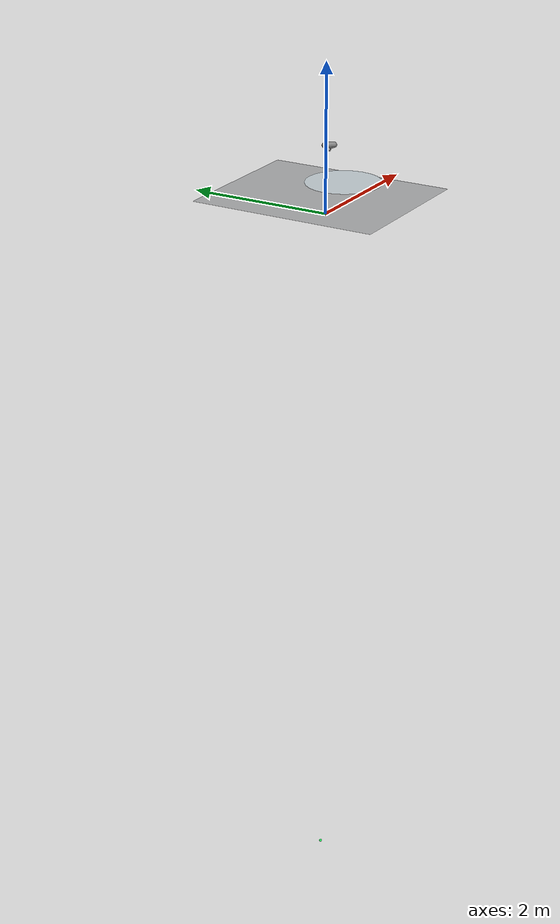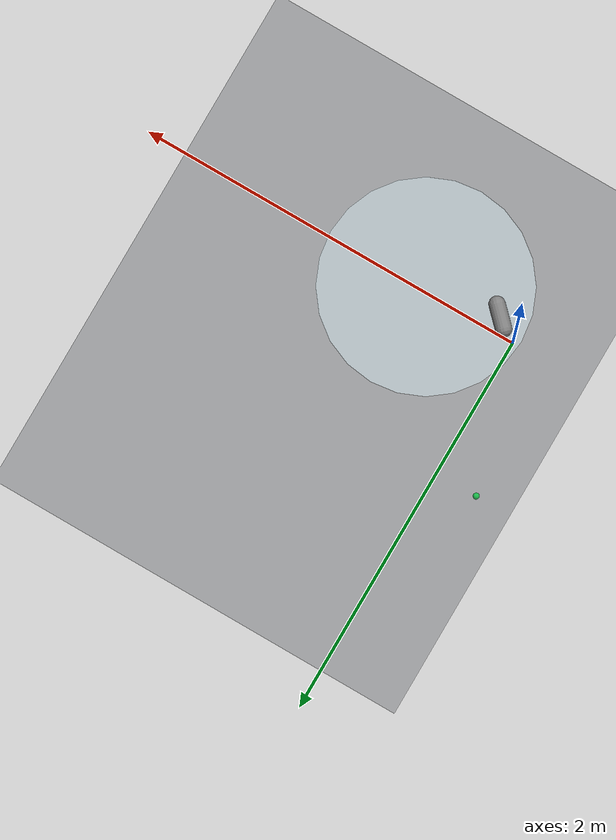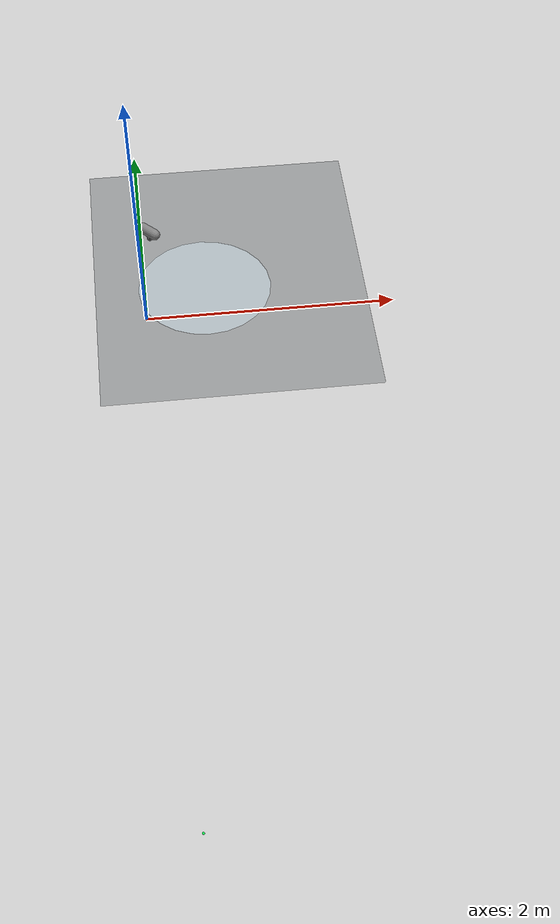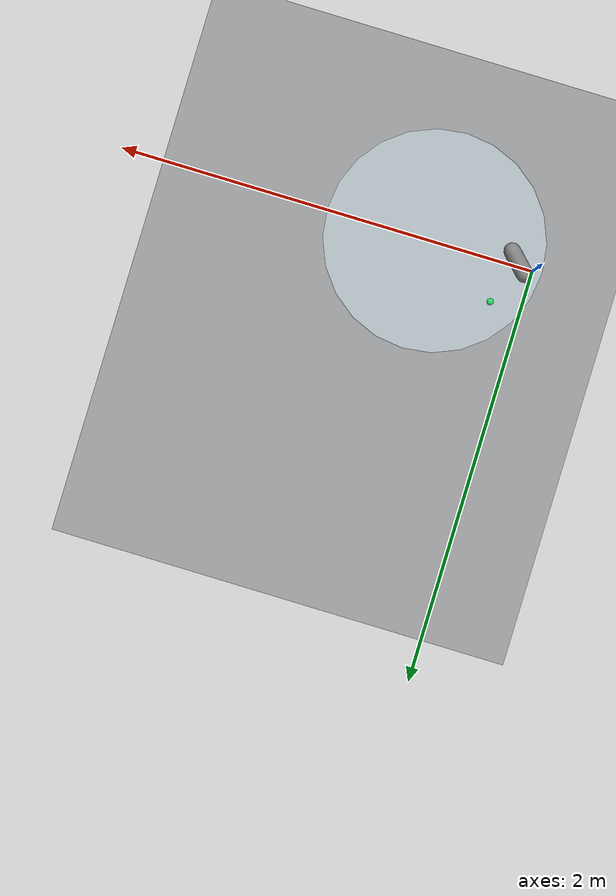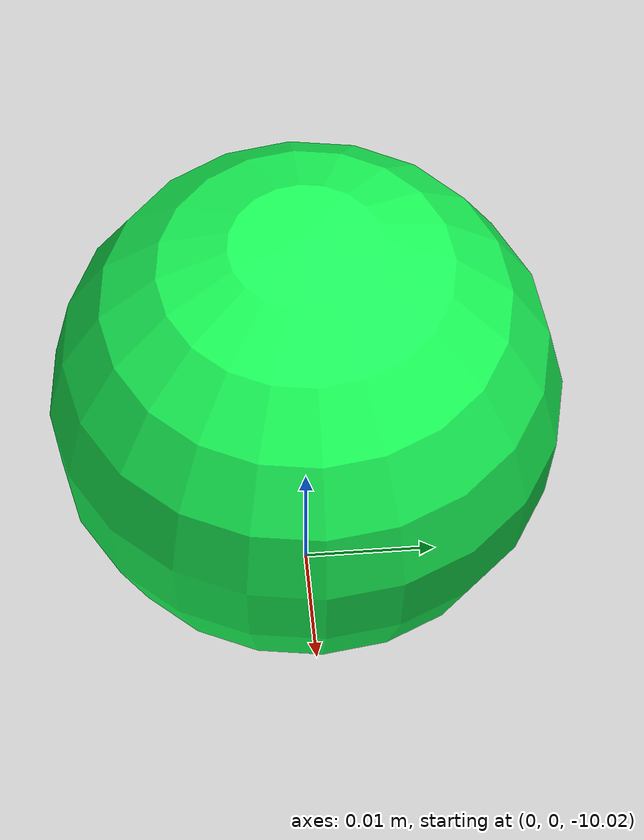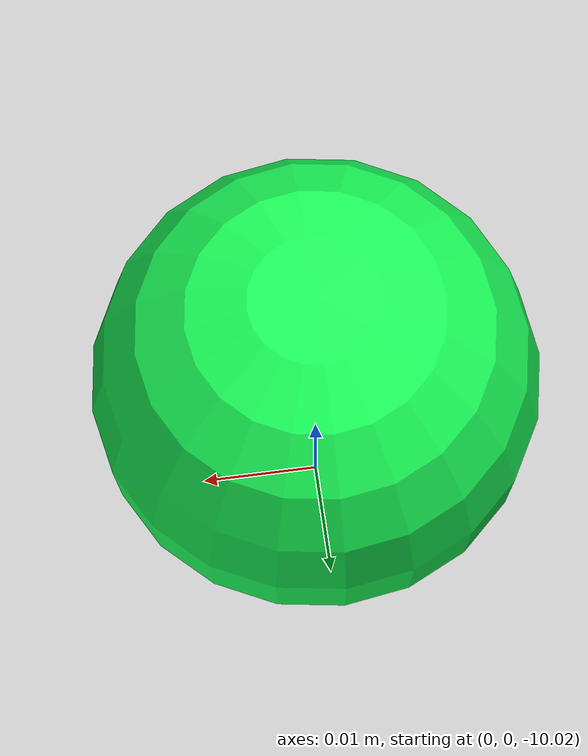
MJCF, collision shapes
<mujoco model="official_franka_panda_tracking">
  <include file="mjx_panda.xml"/>

  <option timestep="0.002" iterations="8" ls_iterations="8" integrator="implicitfast">
    <flag eulerdamp="disable"/>
  </option>

  <statistic center="0.45 0 0.45" extent="1.2"/>

  <visual>
    <global offwidth="1920" offheight="1080" azimuth="135" elevation="-25"/>
    <headlight diffuse="0.65 0.65 0.65" ambient="0.35 0.35 0.35" specular="0 0 0"/>
    <rgba haze="0.12 0.14 0.16 1"/>
    <quality shadowsize="2048"/>
  </visual>

  <asset>
    <texture type="skybox" builtin="gradient" rgb1="0.24 0.32 0.38" rgb2="0 0 0" width="512" height="3072"/>
    <texture type="2d" name="tracking_ground" builtin="checker" mark="edge"
      rgb1="0.18 0.20 0.22" rgb2="0.10 0.12 0.14" markrgb="0.65 0.68 0.70"
      width="300" height="300"/>
    <material name="tracking_ground" texture="tracking_ground" texuniform="true" texrepeat="6 6" reflectance="0.18"/>
  </asset>

  <worldbody>
    <light name="tracking_key" pos="0.8 -1.1 1.9" dir="-0.45 0.55 -1" directional="true"/>
    <light name="tracking_fill" pos="-1.0 1.1 1.2" dir="0.55 -0.45 -1" diffuse="0.25 0.25 0.25"/>
    <geom name="floor" type="plane" size="1.8 1.8 0.05" material="tracking_ground"/>
    <geom name="workspace_disk" type="cylinder" size="0.52 0.001" pos="0.48 0 0.30"
      rgba="0.25 0.45 0.55 0.08" contype="0" conaffinity="0"/>
    <camera name="overview" pos="1.45 -1.45 1.08" xyaxes="0.72 0.69 0 -0.34 0.35 0.87"/>

    <geom name="target_marker" type="sphere" size="0.0200" pos="0 0 -10" rgba="0.10 1.00 0.35 0.95" contype="0" conaffinity="0" mass="0.0001"/>
    <geom name="reference_trace_000" type="sphere" size="0.0042" pos="0 0 -10" rgba="0.50 0.82 1.00 0.38" contype="0" conaffinity="0" mass="0.0001"/>
    <geom name="reference_trace_001" type="sphere" size="0.0042" pos="0 0 -10" rgba="0.50 0.82 1.00 0.38" contype="0" conaffinity="0" mass="0.0001"/>
    <geom name="reference_trace_002" type="sphere" size="0.0042" pos="0 0 -10" rgba="0.50 0.82 1.00 0.38" contype="0" conaffinity="0" mass="0.0001"/>
    <geom name="reference_trace_003" type="sphere" size="0.0042" pos="0 0 -10" rgba="0.50 0.82 1.00 0.38" contype="0" conaffinity="0" mass="0.0001"/>
    <geom name="reference_trace_004" type="sphere" size="0.0042" pos="0 0 -10" rgba="0.50 0.82 1.00 0.38" contype="0" conaffinity="0" mass="0.0001"/>
    <geom name="reference_trace_005" type="sphere" size="0.0042" pos="0 0 -10" rgba="0.50 0.82 1.00 0.38" contype="0" conaffinity="0" mass="0.0001"/>
    <geom name="reference_trace_006" type="sphere" size="0.0042" pos="0 0 -10" rgba="0.50 0.82 1.00 0.38" contype="0" conaffinity="0" mass="0.0001"/>
    <geom name="reference_trace_007" type="sphere" size="0.0042" pos="0 0 -10" rgba="0.50 0.82 1.00 0.38" contype="0" conaffinity="0" mass="0.0001"/>
    <geom name="reference_trace_008" type="sphere" size="0.0042" pos="0 0 -10" rgba="0.50 0.82 1.00 0.38" contype="0" conaffinity="0" mass="0.0001"/>
    <geom name="reference_trace_009" type="sphere" size="0.0042" pos="0 0 -10" rgba="0.50 0.82 1.00 0.38" contype="0" conaffinity="0" mass="0.0001"/>
    <geom name="reference_trace_010" type="sphere" size="0.0042" pos="0 0 -10" rgba="0.50 0.82 1.00 0.38" contype="0" conaffinity="0" mass="0.0001"/>
    <geom name="reference_trace_011" type="sphere" size="0.0042" pos="0 0 -10" rgba="0.50 0.82 1.00 0.38" contype="0" conaffinity="0" mass="0.0001"/>
    <geom name="reference_trace_012" type="sphere" size="0.0042" pos="0 0 -10" rgba="0.50 0.82 1.00 0.38" contype="0" conaffinity="0" mass="0.0001"/>
    <geom name="reference_trace_013" type="sphere" size="0.0042" pos="0 0 -10" rgba="0.50 0.82 1.00 0.38" contype="0" conaffinity="0" mass="0.0001"/>
    <geom name="reference_trace_014" type="sphere" size="0.0042" pos="0 0 -10" rgba="0.50 0.82 1.00 0.38" contype="0" conaffinity="0" mass="0.0001"/>
    <geom name="reference_trace_015" type="sphere" size="0.0042" pos="0 0 -10" rgba="0.50 0.82 1.00 0.38" contype="0" conaffinity="0" mass="0.0001"/>
    <geom name="reference_trace_016" type="sphere" size="0.0042" pos="0 0 -10" rgba="0.50 0.82 1.00 0.38" contype="0" conaffinity="0" mass="0.0001"/>
    <geom name="reference_trace_017" type="sphere" size="0.0042" pos="0 0 -10" rgba="0.50 0.82 1.00 0.38" contype="0" conaffinity="0" mass="0.0001"/>
    <geom name="reference_trace_018" type="sphere" size="0.0042" pos="0 0 -10" rgba="0.50 0.82 1.00 0.38" contype="0" conaffinity="0" mass="0.0001"/>
    <geom name="reference_trace_019" type="sphere" size="0.0042" pos="0 0 -10" rgba="0.50 0.82 1.00 0.38" contype="0" conaffinity="0" mass="0.0001"/>
    <geom name="generated_trace_000" type="sphere" size="0.0045" pos="0 0 -10" rgba="0.15 1.00 0.40 0.70" contype="0" conaffinity="0" mass="0.0001"/>
    <geom name="generated_trace_001" type="sphere" size="0.0045" pos="0 0 -10" rgba="0.15 1.00 0.40 0.70" contype="0" conaffinity="0" mass="0.0001"/>
    <geom name="generated_trace_002" type="sphere" size="0.0045" pos="0 0 -10" rgba="0.15 1.00 0.40 0.70" contype="0" conaffinity="0" mass="0.0001"/>
    <geom name="generated_trace_003" type="sphere" size="0.0045" pos="0 0 -10" rgba="0.15 1.00 0.40 0.70" contype="0" conaffinity="0" mass="0.0001"/>
    <geom name="generated_trace_004" type="sphere" size="0.0045" pos="0 0 -10" rgba="0.15 1.00 0.40 0.70" contype="0" conaffinity="0" mass="0.0001"/>
    <geom name="generated_trace_005" type="sphere" size="0.0045" pos="0 0 -10" rgba="0.15 1.00 0.40 0.70" contype="0" conaffinity="0" mass="0.0001"/>
    <geom name="generated_trace_006" type="sphere" size="0.0045" pos="0 0 -10" rgba="0.15 1.00 0.40 0.70" contype="0" conaffinity="0" mass="0.0001"/>
    <geom name="generated_trace_007" type="sphere" size="0.0045" pos="0 0 -10" rgba="0.15 1.00 0.40 0.70" contype="0" conaffinity="0" mass="0.0001"/>
    <geom name="generated_trace_008" type="sphere" size="0.0045" pos="0 0 -10" rgba="0.15 1.00 0.40 0.70" contype="0" conaffinity="0" mass="0.0001"/>
    <geom name="generated_trace_009" type="sphere" size="0.0045" pos="0 0 -10" rgba="0.15 1.00 0.40 0.70" contype="0" conaffinity="0" mass="0.0001"/>
    <geom name="generated_trace_010" type="sphere" size="0.0045" pos="0 0 -10" rgba="0.15 1.00 0.40 0.70" contype="0" conaffinity="0" mass="0.0001"/>
    <geom name="generated_trace_011" type="sphere" size="0.0045" pos="0 0 -10" rgba="0.15 1.00 0.40 0.70" contype="0" conaffinity="0" mass="0.0001"/>
    <geom name="generated_trace_012" type="sphere" size="0.0045" pos="0 0 -10" rgba="0.15 1.00 0.40 0.70" contype="0" conaffinity="0" mass="0.0001"/>
    <geom name="generated_trace_013" type="sphere" size="0.0045" pos="0 0 -10" rgba="0.15 1.00 0.40 0.70" contype="0" conaffinity="0" mass="0.0001"/>
    <geom name="generated_trace_014" type="sphere" size="0.0045" pos="0 0 -10" rgba="0.15 1.00 0.40 0.70" contype="0" conaffinity="0" mass="0.0001"/>
    <geom name="generated_trace_015" type="sphere" size="0.0045" pos="0 0 -10" rgba="0.15 1.00 0.40 0.70" contype="0" conaffinity="0" mass="0.0001"/>
    <geom name="generated_trace_016" type="sphere" size="0.0045" pos="0 0 -10" rgba="0.15 1.00 0.40 0.70" contype="0" conaffinity="0" mass="0.0001"/>
    <geom name="generated_trace_017" type="sphere" size="0.0045" pos="0 0 -10" rgba="0.15 1.00 0.40 0.70" contype="0" conaffinity="0" mass="0.0001"/>
    <geom name="generated_trace_018" type="sphere" size="0.0045" pos="0 0 -10" rgba="0.15 1.00 0.40 0.70" contype="0" conaffinity="0" mass="0.0001"/>
    <geom name="generated_trace_019" type="sphere" size="0.0045" pos="0 0 -10" rgba="0.15 1.00 0.40 0.70" contype="0" conaffinity="0" mass="0.0001"/>
    <geom name="actual_trace_000" type="sphere" size="0.0048" pos="0 0 -10" rgba="1.00 0.38 0.12 0.82" contype="0" conaffinity="0" mass="0.0001"/>
    <geom name="actual_trace_001" type="sphere" size="0.0048" pos="0 0 -10" rgba="1.00 0.38 0.12 0.82" contype="0" conaffinity="0" mass="0.0001"/>
    <geom name="actual_trace_002" type="sphere" size="0.0048" pos="0 0 -10" rgba="1.00 0.38 0.12 0.82" contype="0" conaffinity="0" mass="0.0001"/>
    <geom name="actual_trace_003" type="sphere" size="0.0048" pos="0 0 -10" rgba="1.00 0.38 0.12 0.82" contype="0" conaffinity="0" mass="0.0001"/>
    <geom name="actual_trace_004" type="sphere" size="0.0048" pos="0 0 -10" rgba="1.00 0.38 0.12 0.82" contype="0" conaffinity="0" mass="0.0001"/>
    <geom name="actual_trace_005" type="sphere" size="0.0048" pos="0 0 -10" rgba="1.00 0.38 0.12 0.82" contype="0" conaffinity="0" mass="0.0001"/>
    <geom name="actual_trace_006" type="sphere" size="0.0048" pos="0 0 -10" rgba="1.00 0.38 0.12 0.82" contype="0" conaffinity="0" mass="0.0001"/>
    <geom name="actual_trace_007" type="sphere" size="0.0048" pos="0 0 -10" rgba="1.00 0.38 0.12 0.82" contype="0" conaffinity="0" mass="0.0001"/>
    <geom name="actual_trace_008" type="sphere" size="0.0048" pos="0 0 -10" rgba="1.00 0.38 0.12 0.82" contype="0" conaffinity="0" mass="0.0001"/>
    <geom name="actual_trace_009" type="sphere" size="0.0048" pos="0 0 -10" rgba="1.00 0.38 0.12 0.82" contype="0" conaffinity="0" mass="0.0001"/>
    <geom name="actual_trace_010" type="sphere" size="0.0048" pos="0 0 -10" rgba="1.00 0.38 0.12 0.82" contype="0" conaffinity="0" mass="0.0001"/>
    <geom name="actual_trace_011" type="sphere" size="0.0048" pos="0 0 -10" rgba="1.00 0.38 0.12 0.82" contype="0" conaffinity="0" mass="0.0001"/>
    <geom name="actual_trace_012" type="sphere" size="0.0048" pos="0 0 -10" rgba="1.00 0.38 0.12 0.82" contype="0" conaffinity="0" mass="0.0001"/>
    <geom name="actual_trace_013" type="sphere" size="0.0048" pos="0 0 -10" rgba="1.00 0.38 0.12 0.82" contype="0" conaffinity="0" mass="0.0001"/>
    <geom name="actual_trace_014" type="sphere" size="0.0048" pos="0 0 -10" rgba="1.00 0.38 0.12 0.82" contype="0" conaffinity="0" mass="0.0001"/>
    <geom name="actual_trace_015" type="sphere" size="0.0048" pos="0 0 -10" rgba="1.00 0.38 0.12 0.82" contype="0" conaffinity="0" mass="0.0001"/>
    <geom name="actual_trace_016" type="sphere" size="0.0048" pos="0 0 -10" rgba="1.00 0.38 0.12 0.82" contype="0" conaffinity="0" mass="0.0001"/>
    <geom name="actual_trace_017" type="sphere" size="0.0048" pos="0 0 -10" rgba="1.00 0.38 0.12 0.82" contype="0" conaffinity="0" mass="0.0001"/>
    <geom name="actual_trace_018" type="sphere" size="0.0048" pos="0 0 -10" rgba="1.00 0.38 0.12 0.82" contype="0" conaffinity="0" mass="0.0001"/>
    <geom name="actual_trace_019" type="sphere" size="0.0048" pos="0 0 -10" rgba="1.00 0.38 0.12 0.82" contype="0" conaffinity="0" mass="0.0001"/>
  </worldbody>
</mujoco>

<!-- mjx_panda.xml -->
<mujoco model="panda">
  <compiler angle="radian" meshdir="assets" autolimits="true"/>

  <default>
    <default class="panda">
      <material specular="0.5" shininess="0.25"/>
      <joint armature="0.1" damping="1" axis="0 0 1" range="-2.8973 2.8973"/>
      <general dyntype="none" biastype="affine" ctrlrange="-2.8973 2.8973" forcerange="-87 87"/>
      <position forcerange="-100 100"/>
      <default class="finger">
        <joint axis="0 1 0" type="slide" range="0 0.04"/>
      </default>

      <default class="visual">
        <geom type="mesh" contype="0" conaffinity="0" group="2"/>
      </default>
      <default class="collision">
        <geom group="3" type="mesh" contype="0" conaffinity="0"/>
        <default class="primitive_collision">
          <geom group="3" type="box" contype="0" conaffinity="0"
           condim="3" solimp="0.99 0.995 0.01" solref="0.01 1" friction="1 0.005 0.0001"/>
          <default class="fingertip_pad_collision_1">
            <geom type="box" size="0.011 0.0075 0.01" pos="0 0.0185 0.011"/>
          </default>
          <default class="fingertip_pad_collision_2">
            <geom type="box" size="0.011 0.0044 0.0019" pos="0 0.0068 0.0022"/>
          </default>
          <default class="fingertip_pad_collision_3">
            <geom type="box" size="0.00875 0.0035 0.01175" pos="0 0.0159 0.02835" quat="1 0.25 0 0"/>
          </default>
          <default class="fingertip_pad_collision_4">
            <geom type="box" size="0.00875 0.0076 0.00825" pos="0 0.00758 0.04525" conaffinity="3"/>
          </default>
        </default>
      </default>
    </default>
  </default>

  <asset>
    <material class="panda" name="white" rgba="1 1 1 1"/>
    <material class="panda" name="off_white" rgba="0.901961 0.921569 0.929412 1"/>
    <material class="panda" name="black" rgba="0.25 0.25 0.25 1"/>
    <material class="panda" name="green" rgba="0 1 0 1"/>
    <material class="panda" name="light_blue" rgba="0.039216 0.541176 0.780392 1"/>

    <!-- Collision meshes -->
    <mesh name="link0_c" file="link0.stl"/>
    <mesh name="link1_c" file="link1.stl"/>
    <mesh name="link2_c" file="link2.stl"/>
    <mesh name="link3_c" file="link3.stl"/>
    <mesh name="link4_c" file="link4.stl"/>
    <mesh name="link5_c0" file="link5_collision_0.obj"/>
    <mesh name="link5_c1" file="link5_collision_1.obj"/>
    <mesh name="link5_c2" file="link5_collision_2.obj"/>
    <mesh name="link6_c" file="link6.stl"/>
    <mesh name="link7_c" file="link7.stl"/>
    <mesh name="hand_c" file="hand.stl"/>

    <!-- Visual meshes -->
    <mesh file="link0_0.obj"/>
    <mesh file="link0_1.obj"/>
    <mesh file="link0_2.obj"/>
    <mesh file="link0_3.obj"/>
    <mesh file="link0_4.obj"/>
    <mesh file="link0_5.obj"/>
    <mesh file="link0_7.obj"/>
    <mesh file="link0_8.obj"/>
    <mesh file="link0_9.obj"/>
    <mesh file="link0_10.obj"/>
    <mesh file="link0_11.obj"/>
    <mesh file="link1.obj"/>
    <mesh file="link2.obj"/>
    <mesh file="link3_0.obj"/>
    <mesh file="link3_1.obj"/>
    <mesh file="link3_2.obj"/>
    <mesh file="link3_3.obj"/>
    <mesh file="link4_0.obj"/>
    <mesh file="link4_1.obj"/>
    <mesh file="link4_2.obj"/>
    <mesh file="link4_3.obj"/>
    <mesh file="link5_0.obj"/>
    <mesh file="link5_1.obj"/>
    <mesh file="link5_2.obj"/>
    <mesh file="link6_0.obj"/>
    <mesh file="link6_1.obj"/>
    <mesh file="link6_2.obj"/>
    <mesh file="link6_3.obj"/>
    <mesh file="link6_4.obj"/>
    <mesh file="link6_5.obj"/>
    <mesh file="link6_6.obj"/>
    <mesh file="link6_7.obj"/>
    <mesh file="link6_8.obj"/>
    <mesh file="link6_9.obj"/>
    <mesh file="link6_10.obj"/>
    <mesh file="link6_11.obj"/>
    <mesh file="link6_12.obj"/>
    <mesh file="link6_13.obj"/>
    <mesh file="link6_14.obj"/>
    <mesh file="link6_15.obj"/>
    <mesh file="link6_16.obj"/>
    <mesh file="link7_0.obj"/>
    <mesh file="link7_1.obj"/>
    <mesh file="link7_2.obj"/>
    <mesh file="link7_3.obj"/>
    <mesh file="link7_4.obj"/>
    <mesh file="link7_5.obj"/>
    <mesh file="link7_6.obj"/>
    <mesh file="link7_7.obj"/>
    <mesh file="hand_0.obj"/>
    <mesh file="hand_1.obj"/>
    <mesh file="hand_2.obj"/>
    <mesh file="hand_3.obj"/>
    <mesh file="hand_4.obj"/>
    <mesh file="finger_0.obj"/>
    <mesh file="finger_1.obj"/>
  </asset>

  <worldbody>
    <light name="top" pos="0 0 2" mode="trackcom"/>
    <body name="link0" childclass="panda">
      <inertial mass="0.629769" pos="-0.041018 -0.00014 0.049974"
        fullinertia="0.00315 0.00388 0.004285 8.2904e-7 0.00015 8.2299e-6"/>
      <geom mesh="link0_0" material="off_white" class="visual"/>
      <geom mesh="link0_1" material="black" class="visual"/>
      <geom mesh="link0_2" material="off_white" class="visual"/>
      <geom mesh="link0_3" material="black" class="visual"/>
      <geom mesh="link0_4" material="off_white" class="visual"/>
      <geom mesh="link0_5" material="black" class="visual"/>
      <geom mesh="link0_7" material="white" class="visual"/>
      <geom mesh="link0_8" material="white" class="visual"/>
      <geom mesh="link0_9" material="black" class="visual"/>
      <geom mesh="link0_10" material="off_white" class="visual"/>
      <geom mesh="link0_11" material="white" class="visual"/>
      <geom mesh="link0_c" class="collision"/>
      <body name="link1" pos="0 0 0.333">
        <inertial mass="4.970684" pos="0.003875 0.002081 -0.04762"
          fullinertia="0.70337 0.70661 0.0091170 -0.00013900 0.0067720 0.019169"/>
        <joint name="joint1" damping="40"/>
        <geom material="white" mesh="link1" class="visual"/>
        <geom mesh="link1_c" class="collision"/>
        <body name="link2" quat="1 -1 0 0">
          <inertial mass="0.646926" pos="-0.003141 -0.02872 0.003495"
            fullinertia="0.0079620 2.8110e-2 2.5995e-2 -3.925e-3 1.0254e-2 7.04e-4"/>
          <joint name="joint2" range="-1.7628 1.7628" damping="40"/>
          <geom material="white" mesh="link2" class="visual"/>
          <geom mesh="link2_c" class="collision"/>
          <body name="link3" pos="0 -0.316 0" quat="1 1 0 0">
            <joint name="joint3" damping="40"/>
            <inertial mass="3.228604" pos="2.7518e-2 3.9252e-2 -6.6502e-2"
              fullinertia="3.7242e-2 3.6155e-2 1.083e-2 -4.761e-3 -1.1396e-2 -1.2805e-2"/>
            <geom mesh="link3_0" material="white" class="visual"/>
            <geom mesh="link3_1" material="white" class="visual"/>
            <geom mesh="link3_2" material="white" class="visual"/>
            <geom mesh="link3_3" material="black" class="visual"/>
            <geom mesh="link3_c" class="collision"/>
            <body name="link4" pos="0.0825 0 0" quat="1 1 0 0">
              <inertial mass="3.587895" pos="-5.317e-2 1.04419e-1 2.7454e-2"
                fullinertia="2.5853e-2 1.9552e-2 2.8323e-2 7.796e-3 -1.332e-3 8.641e-3"/>
              <joint name="joint4" range="-3.0718 -0.0698" damping="40"/>
              <geom mesh="link4_0" material="white" class="visual"/>
              <geom mesh="link4_1" material="white" class="visual"/>
              <geom mesh="link4_2" material="black" class="visual"/>
              <geom mesh="link4_3" material="white" class="visual"/>
              <geom mesh="link4_c" class="collision"/>
              <body name="link5" pos="-0.0825 0.384 0" quat="1 -1 0 0">
                <inertial mass="1.225946" pos="-1.1953e-2 4.1065e-2 -3.8437e-2"
                  fullinertia="3.5549e-2 2.9474e-2 8.627e-3 -2.117e-3 -4.037e-3 2.29e-4"/>
                <joint name="joint5" damping="2"/>
                <geom mesh="link5_0" material="black" class="visual"/>
                <geom mesh="link5_1" material="white" class="visual"/>
                <geom mesh="link5_2" material="white" class="visual"/>
                <geom mesh="link5_c0" class="collision"/>
                <geom mesh="link5_c1" class="collision"/>
                <geom mesh="link5_c2" class="collision"/>
                <body name="link6" quat="1 1 0 0">
                  <inertial mass="1.666555" pos="6.0149e-2 -1.4117e-2 -1.0517e-2"
                    fullinertia="1.964e-3 4.354e-3 5.433e-3 1.09e-4 -1.158e-3 3.41e-4"/>
                  <joint name="joint6" range="-0.0175 3.7525" damping="2"/>
                  <geom mesh="link6_0" material="off_white" class="visual"/>
                  <geom mesh="link6_1" material="white" class="visual"/>
                  <geom mesh="link6_2" material="black" class="visual"/>
                  <geom mesh="link6_3" material="white" class="visual"/>
                  <geom mesh="link6_4" material="white" class="visual"/>
                  <geom mesh="link6_5" material="white" class="visual"/>
                  <geom mesh="link6_6" material="white" class="visual"/>
                  <geom mesh="link6_7" material="light_blue" class="visual"/>
                  <geom mesh="link6_8" material="light_blue" class="visual"/>
                  <geom mesh="link6_9" material="black" class="visual"/>
                  <geom mesh="link6_10" material="black" class="visual"/>
                  <geom mesh="link6_11" material="white" class="visual"/>
                  <geom mesh="link6_12" material="green" class="visual"/>
                  <geom mesh="link6_13" material="white" class="visual"/>
                  <geom mesh="link6_14" material="black" class="visual"/>
                  <geom mesh="link6_15" material="black" class="visual"/>
                  <geom mesh="link6_16" material="white" class="visual"/>
                  <geom mesh="link6_c" class="collision"/>
                  <body name="link7" pos="0.088 0 0" quat="1 1 0 0">
                    <inertial mass="7.35522e-01" pos="1.0517e-2 -4.252e-3 6.1597e-2"
                      fullinertia="1.2516e-2 1.0027e-2 4.815e-3 -4.28e-4 -1.196e-3 -7.41e-4"/>
                    <joint name="joint7" damping="2"/>
                    <geom mesh="link7_0" material="white" class="visual"/>
                    <geom mesh="link7_1" material="black" class="visual"/>
                    <geom mesh="link7_2" material="black" class="visual"/>
                    <geom mesh="link7_3" material="black" class="visual"/>
                    <geom mesh="link7_4" material="black" class="visual"/>
                    <geom mesh="link7_5" material="black" class="visual"/>
                    <geom mesh="link7_6" material="black" class="visual"/>
                    <geom mesh="link7_7" material="white" class="visual"/>
                    <geom mesh="link7_c" class="collision"/>
                    <body name="hand" pos="0 0 0.107" quat="0.9238795 0 0 -0.3826834">
                      <inertial mass="0.73" pos="-0.01 0 0.03" diaginertia="0.001 0.0025 0.0017"/>
                      <geom mesh="hand_0" material="off_white" class="visual"/>
                      <geom mesh="hand_1" material="black" class="visual"/>
                      <geom mesh="hand_2" material="black" class="visual"/>
                      <geom mesh="hand_3" material="white" class="visual"/>
                      <geom mesh="hand_4" material="off_white" class="visual"/>
                      <geom mesh="hand_c" class="collision"/>
                      <geom name="hand_capsule" type="capsule"
                       class="collision" conaffinity="1" size="0.04 0.06"
                       quat="1 1 0 0" pos="0 0 0.03"/>
                      <site name="gripper" pos="0 0 0.1"/>

                      <!-- TCP LINK -->
                      <body name="tcp_link" pos="0. 0. 0." quat="1 0 0 0">
                        <geom size="0.005 0.005 0.005" pos="0.0 0.0 0.0" contype="0" conaffinity="0" type="box" rgba="1.00 0.00 0.0 1.0" />
                      </body>

                      <body name="left_finger" pos="0 0 0.0584">
                        <inertial mass="0.015" pos="0 0 0" diaginertia="2.375e-6 2.375e-6 7.5e-7"/>
                        <joint name="finger_joint1" class="finger" damping="10"/>
                        <geom mesh="finger_0" material="off_white" class="visual"/>
                        <geom mesh="finger_1" material="black" class="visual"/>
                        <geom mesh="finger_0" class="collision"/>
                        <geom class="fingertip_pad_collision_1"/>
                        <geom class="fingertip_pad_collision_2"/>
                        <geom class="fingertip_pad_collision_3"/>
                        <geom name="left_finger_pad" class="fingertip_pad_collision_4"/>
                      </body>
                      <body name="right_finger" pos="0 0 0.0584" quat="0 0 0 1">
                        <inertial mass="0.015" pos="0 0 0" diaginertia="2.375e-6 2.375e-6 7.5e-7"/>
                        <joint name="finger_joint2" class="finger" damping="10"/>
                        <geom mesh="finger_0" material="off_white" class="visual"/>
                        <geom mesh="finger_1" material="black" class="visual"/>
                        <geom mesh="finger_0" class="collision"/>
                        <geom class="fingertip_pad_collision_1"/>
                        <geom class="fingertip_pad_collision_2"/>
                        <geom class="fingertip_pad_collision_3"/>
                        <geom name="right_finger_pad" class="fingertip_pad_collision_4"/>
                      </body>
                    </body>
                  </body>
                </body>
              </body>
            </body>
          </body>
        </body>
      </body>
    </body>
  </worldbody>

  <equality>
    <joint joint1="finger_joint1" joint2="finger_joint2" solimp="0.95 0.99 0.001" solref="0.005 1"/>
  </equality>

  <actuator>
    <position class="panda" name="actuator1" joint="joint1" kp="1000" kv="20"
     ctrlrange="-2.8973 2.8973"/>
    <position class="panda" name="actuator2" joint="joint2" kp="1000" kv="20"
     ctrlrange="-1.7628 1.7628"/>
    <position class="panda" name="actuator3" joint="joint3" kp="750" kv="4"
     ctrlrange="-2.8973 2.8973"/>
    <position class="panda" name="actuator4" joint="joint4" kp="750" kv="4"
     ctrlrange="-3.0718 -0.0698"/>
    <position class="panda" name="actuator5" joint="joint5" kp="300" kv="2"
     forcerange="-12 12" ctrlrange="-2.8973 2.8973"/>
    <position class="panda" name="actuator6" joint="joint6" kp="300" kv="2" forcerange="-12 12"
      ctrlrange="-0.0175 3.7525"/>
    <position class="panda" name="actuator7" joint="joint7" kp="300" kv="2" forcerange="-12 12"/>
    <general class="panda" name="actuator8" joint="finger_joint1"
     ctrlrange="0 0.04" gainprm="350 0 0" biasprm="0 -350 -10" forcerange="-200 200"/>
  </actuator>
</mujoco>
